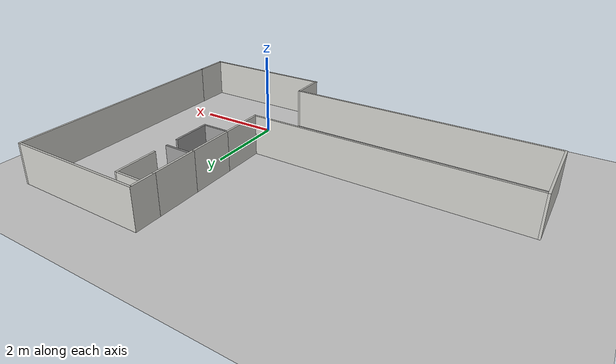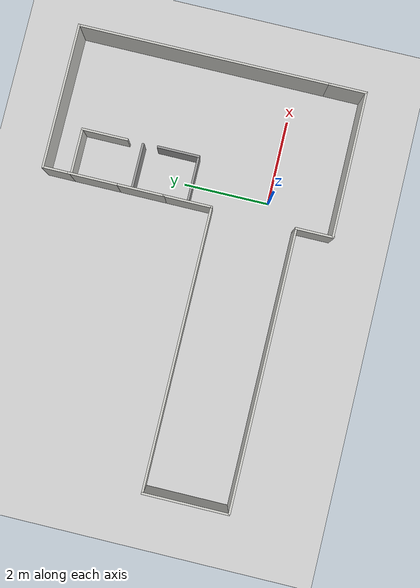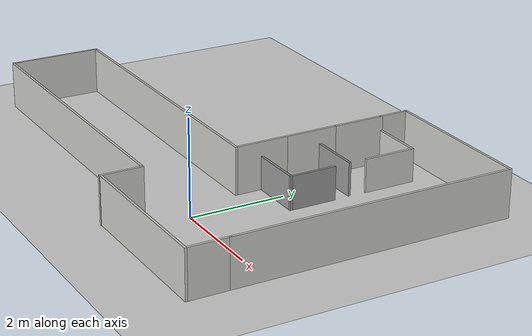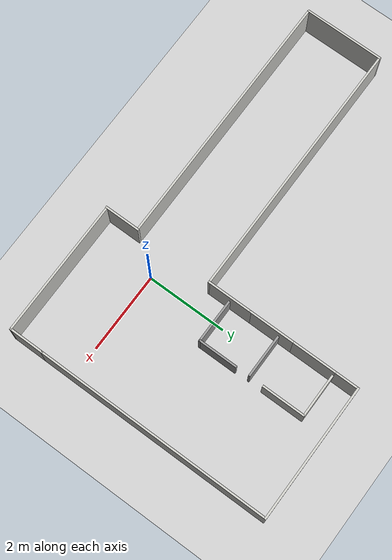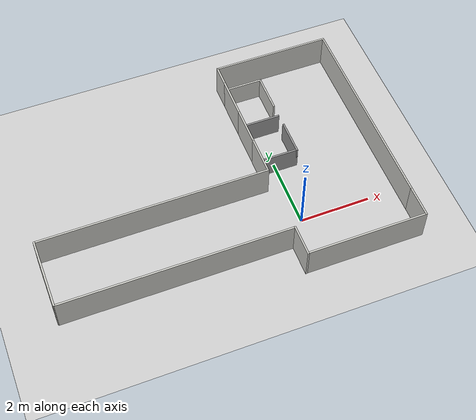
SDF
<sdf version="1.7">
 <world name="default">
  <light name="sun" type="directional">
   <pose>0 0 10 0 -0 0</pose>
   <diffuse>0.8 0.8 0.8 1</diffuse>
   <specular>0.2 0.2 0.2 1</specular>
   <attenuation>
    <range>1000</range>
    <constant>0.9</constant>
    <linear>0.01</linear>
    <quadratic>0.001</quadratic>
   </attenuation>
   <direction>-0.5 0.1 -0.9</direction>
   <spot><inner_angle>0</inner_angle><outer_angle>0</outer_angle><falloff>0</falloff></spot>
  </light>
  <model name="ground_plane">
   <static>1</static>
   <link name="link">
    <collision name="collision">
     <geometry><plane><normal>0 0 1</normal><size>100 100</size></plane></geometry>
     <surface><friction><ode><mu>100</mu><mu2>50</mu2></ode></friction></surface>
    </collision>
    <visual name="visual">
     <cast_shadows>0</cast_shadows>
     <geometry><plane><normal>0 0 1</normal><size>100 100</size></plane></geometry>
     <material>
      <script><uri>file://media/materials/scripts/gazebo.material</uri><name>Gazebo/Grey</name></script>
     </material>
    </visual>
   </link>
  </model>
  <gravity>0 0 -9.8</gravity>
  <magnetic_field>6e-06 2.3e-05 -4.2e-05</magnetic_field>
  <atmosphere type="adiabatic"/>
  <physics type="ode">
   <max_step_size>0.001</max_step_size>
   <real_time_factor>1</real_time_factor>
   <real_time_update_rate>1000</real_time_update_rate>
  </physics>
  <scene><ambient>0.4 0.4 0.4 1</ambient><background>0.7 0.7 0.7 1</background><shadows>1</shadows></scene>
  <audio><device>default</device></audio>
  <spherical_coordinates>
   <surface_model>EARTH_WGS84</surface_model>
   <latitude_deg>0</latitude_deg>
   <longitude_deg>0</longitude_deg>
   <elevation>0</elevation>
   <heading_deg>0</heading_deg>
  </spherical_coordinates>
  <model name="cheJian.world">
   <pose>-2.0782 1.79251 0 0 -0 0</pose>
   <link name="Wall_1">
    <collision name="Wall_1_Collision">
     <geometry><box><size>5.9 0.05 1</size></box></geometry>
     <pose>0 0 0.5 0 -0 0</pose>
    </collision>
    <visual name="Wall_1_Visual">
     <pose>0 0 0.5 0 -0 0</pose>
     <geometry><box><size>5.9 0.05 1</size></box></geometry>
     <material>
      <script><uri>file://media/materials/scripts/gazebo.material</uri><name>Gazebo/CeilingTiled</name></script>
      <ambient>1 1 1 1</ambient>
     </material>
     <meta><layer>0</layer></meta>
    </visual>
    <pose>4.925 0.430112 0 0 -0 1.5708</pose>
   </link>
   <link name="Wall_16">
    <collision name="Wall_16_Collision">
     <geometry><box><size>6.5 0.05 1</size></box></geometry>
     <pose>0 0 0.5 0 -0 0</pose>
    </collision>
    <visual name="Wall_16_Visual">
     <pose>0 0 0.5 0 -0 0</pose>
     <geometry><box><size>6.5 0.05 1</size></box></geometry>
     <material>
      <script><uri>file://media/materials/scripts/gazebo.material</uri><name>Gazebo/CeilingTiled</name></script>
      <ambient>1 1 1 1</ambient>
     </material>
     <meta><layer>0</layer></meta>
    </visual>
    <pose>-1.65 -0.544888 0 0 -0 3.14159</pose>
   </link>
   <link name="Wall_19">
    <collision name="Wall_19_Collision">
     <geometry><box><size>2 0.05 1</size></box></geometry>
     <pose>0 0 0.5 0 -0 0</pose>
    </collision>
    <visual name="Wall_19_Visual">
     <pose>0 0 0.5 0 -0 0</pose>
     <geometry><box><size>2 0.05 1</size></box></geometry>
     <material>
      <script><uri>file://media/materials/scripts/gazebo.material</uri><name>Gazebo/CeilingTiled</name></script>
      <ambient>1 1 1 1</ambient>
     </material>
     <meta><layer>0</layer></meta>
    </visual>
    <pose>-4.925 -1.51989 0 0 -0 1.5708</pose>
   </link>
   <link name="Wall_2">
    <collision name="Wall_2_Collision">
     <geometry><box><size>3.39959 0.05 1</size></box></geometry>
     <pose>0 0 0.5 0 -0 0</pose>
    </collision>
    <visual name="Wall_2_Visual">
     <pose>0 0 0.5 0 -0 0</pose>
     <geometry><box><size>3.39959 0.05 1</size></box></geometry>
     <material>
      <script><uri>file://media/materials/scripts/gazebo.material</uri><name>Gazebo/CeilingTiled</name></script>
      <ambient>1 1 1 1</ambient>
     </material>
     <meta><layer>0</layer></meta>
    </visual>
    <pose>3.25 3.35511 0 0 -0 3.14159</pose>
   </link>
   <link name="Wall_21">
    <collision name="Wall_21_Collision">
     <geometry><box><size>1.15 0.05 0.7</size></box></geometry>
     <pose>0 0 0.35 0 -0 0</pose>
    </collision>
    <visual name="Wall_21_Visual">
     <pose>0 0 0.35 0 -0 0</pose>
     <geometry><box><size>1.15 0.05 0.7</size></box></geometry>
     <material>
      <script><uri>file://media/materials/scripts/gazebo.material</uri><name>Gazebo/CeilingTiled</name></script>
      <ambient>1 1 1 1</ambient>
     </material>
     <meta><layer>0</layer></meta>
    </visual>
    <pose>2.125 2.75511 0 0 -0 0</pose>
   </link>
   <link name="Wall_28">
    <collision name="Wall_28_Collision">
     <geometry><box><size>1.1 0.05 0.7</size></box></geometry>
     <pose>0 0 0.35 0 -0 0</pose>
    </collision>
    <visual name="Wall_28_Visual">
     <pose>0 0 0.35 0 -0 0</pose>
     <geometry><box><size>1.1 0.05 0.7</size></box></geometry>
     <material>
      <script><uri>file://media/materials/scripts/gazebo.material</uri><name>Gazebo/CeilingTiled</name></script>
      <ambient>1 1 1 1</ambient>
     </material>
     <meta><layer>0</layer></meta>
    </visual>
    <pose>2.675 2.23011 0 0 -0 -1.5708</pose>
   </link>
   <link name="Wall_3">
    <collision name="Wall_3_Collision">
     <geometry><box><size>0.65 0.05 1</size></box></geometry>
     <pose>0 0 0.5 0 -0 0</pose>
    </collision>
    <visual name="Wall_3_Visual">
     <pose>0 0 0.5 0 -0 0</pose>
     <geometry><box><size>0.65 0.05 1</size></box></geometry>
     <material>
      <script><uri>file://media/materials/scripts/gazebo.material</uri><name>Gazebo/CeilingTiled</name></script>
      <ambient>1 1 1 1</ambient>
     </material>
     <meta><layer>0</layer></meta>
    </visual>
    <pose>1.575 3.05511 0 0 -0 -1.5708</pose>
   </link>
   <link name="Wall_33">
    <collision name="Wall_33_Collision">
     <geometry><box><size>0.9 0.05 1</size></box></geometry>
     <pose>0 0 0.5 0 -0 0</pose>
    </collision>
    <visual name="Wall_33_Visual">
     <pose>0 0 0.5 0 -0 0</pose>
     <geometry><box><size>0.9 0.05 1</size></box></geometry>
     <material>
      <script><uri>file://media/materials/scripts/gazebo.material</uri><name>Gazebo/CeilingTiled</name></script>
      <ambient>1 1 1 1</ambient>
     </material>
     <meta><layer>0</layer></meta>
    </visual>
    <pose>4.925 -2.91989 0 0 -0 -1.5708</pose>
   </link>
   <link name="Wall_34">
    <collision name="Wall_34_Collision">
     <geometry><box><size>3.4 0.05 1</size></box></geometry>
     <pose>0 0 0.5 0 -0 0</pose>
    </collision>
    <visual name="Wall_34_Visual">
     <pose>0 0 0.5 0 -0 0</pose>
     <geometry><box><size>3.4 0.05 1</size></box></geometry>
     <material>
      <script><uri>file://media/materials/scripts/gazebo.material</uri><name>Gazebo/CeilingTiled</name></script>
      <ambient>1 1 1 1</ambient>
     </material>
     <meta><layer>0</layer></meta>
    </visual>
    <pose>3.25 -3.34489 0 0 -0 3.14159</pose>
   </link>
   <link name="Wall_37">
    <collision name="Wall_37_Collision">
     <geometry><box><size>0.90045 0.05 1</size></box></geometry>
     <pose>0 0 0.5 0 -0 0</pose>
    </collision>
    <visual name="Wall_37_Visual">
     <pose>0 0 0.5 0 -0 0</pose>
     <geometry><box><size>0.90045 0.05 1</size></box></geometry>
     <material>
      <script><uri>file://media/materials/scripts/gazebo.material</uri><name>Gazebo/CeilingTiled</name></script>
      <ambient>1 1 1 1</ambient>
     </material>
     <meta><layer>0</layer></meta>
    </visual>
    <pose>1.549 -2.92989 0 0 -0 -1.5708</pose>
   </link>
   <link name="Wall_39">
    <collision name="Wall_39_Collision">
     <geometry><box><size>6.5 0.05 1</size></box></geometry>
     <pose>0 0 0.5 0 -0 0</pose>
    </collision>
    <visual name="Wall_39_Visual">
     <pose>0 0 0.5 0 -0 0</pose>
     <geometry><box><size>6.5 0.05 1</size></box></geometry>
     <material>
      <script><uri>file://media/materials/scripts/gazebo.material</uri><name>Gazebo/CeilingTiled</name></script>
      <ambient>1 1 1 1</ambient>
     </material>
     <meta><layer>0</layer></meta>
    </visual>
    <pose>-1.676 -2.50489 0 0 -0 3.14159</pose>
   </link>
   <link name="Wall_4">
    <collision name="Wall_4_Collision">
     <geometry><box><size>1.15 0.05 1</size></box></geometry>
     <pose>0 0 0.5 0 -0 0</pose>
    </collision>
    <visual name="Wall_4_Visual">
     <pose>0 0 0.5 0 -0 0</pose>
     <geometry><box><size>1.15 0.05 1</size></box></geometry>
     <material>
      <script><uri>file://media/materials/scripts/gazebo.material</uri><name>Gazebo/CeilingTiled</name></script>
      <ambient>1 1 1 1</ambient>
     </material>
     <meta><layer>0</layer></meta>
    </visual>
    <pose>1.575 2.20511 0 0 -0 -1.5708</pose>
   </link>
   <link name="Wall_41">
    <collision name="Wall_41_Collision">
     <geometry><box><size>1.15023 0.05 0.7</size></box></geometry>
     <pose>0 0 0.35 0 -0 0</pose>
    </collision>
    <visual name="Wall_41_Visual">
     <pose>0 0 0.35 0 -0 0</pose>
     <geometry><box><size>1.15023 0.05 0.7</size></box></geometry>
     <material>
      <script><uri>file://media/materials/scripts/gazebo.material</uri><name>Gazebo/Grey</name></script>
      <ambient>1 1 1 1</ambient>
     </material>
     <meta><layer>0</layer></meta>
    </visual>
    <pose>2.129 0.017112 0 0 -0 0</pose>
   </link>
   <link name="Wall_44">
    <collision name="Wall_44_Collision">
     <geometry><box><size>1 0.05 0.7</size></box></geometry>
     <pose>0 0 0.35 0 -0 0</pose>
    </collision>
    <visual name="Wall_44_Visual">
     <pose>0 0 0.35 0 -0 0</pose>
     <geometry><box><size>1 0.05 0.7</size></box></geometry>
     <material>
      <script><uri>file://media/materials/scripts/gazebo.material</uri><name>Gazebo/Grey</name></script>
      <ambient>1 1 1 1</ambient>
     </material>
     <meta><layer>0</layer></meta>
    </visual>
    <pose>2.679 0.492112 0 0 -0 1.5708</pose>
   </link>
   <link name="Wall_46">
    <collision name="Wall_46_Collision">
     <geometry><box><size>1.1 0.05 0.7</size></box></geometry>
     <pose>0 0 0.35 0 -0 0</pose>
    </collision>
    <visual name="Wall_46_Visual">
     <pose>0 0 0.35 0 -0 0</pose>
     <geometry><box><size>1.1 0.05 0.7</size></box></geometry>
     <material>
      <script><uri>file://media/materials/scripts/gazebo.material</uri><name>Gazebo/Grey</name></script>
      <ambient>1 1 1 1</ambient>
     </material>
     <meta><layer>0</layer></meta>
    </visual>
    <pose>2.127 1.32411 0 0 -0 0</pose>
   </link>
   <link name="Wall_5">
    <collision name="Wall_5_Collision">
     <geometry><box><size>1.14964 0.05 1</size></box></geometry>
     <pose>0 0 0.5 0 -0 0</pose>
    </collision>
    <visual name="Wall_5_Visual">
     <pose>0 0 0.5 0 -0 0</pose>
     <geometry><box><size>1.14964 0.05 1</size></box></geometry>
     <material>
      <script><uri>file://media/materials/scripts/gazebo.material</uri><name>Gazebo/CeilingTiled</name></script>
      <ambient>1 1 1 1</ambient>
     </material>
     <meta><layer>0</layer></meta>
    </visual>
    <pose>1.575 1.10511 0 0 -0 -1.5708</pose>
   </link>
   <link name="Wall_6">
    <collision name="Wall_6_Collision">
     <geometry><box><size>1.14964 0.05 1</size></box></geometry>
     <pose>0 0 0.5 0 -0 0</pose>
    </collision>
    <visual name="Wall_6_Visual">
     <pose>0 0 0.5 0 -0 0</pose>
     <geometry><box><size>1.14964 0.05 1</size></box></geometry>
     <material>
      <script><uri>file://media/materials/scripts/gazebo.material</uri><name>Gazebo/CeilingTiled</name></script>
      <ambient>1 1 1 1</ambient>
     </material>
     <meta><layer>0</layer></meta>
    </visual>
    <pose>1.575 0.005112 0 0 -0 -1.5708</pose>
   </link>
   <static>1</static>
  </model>
 </world>
</sdf>
